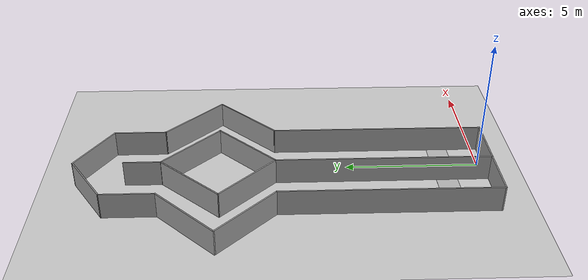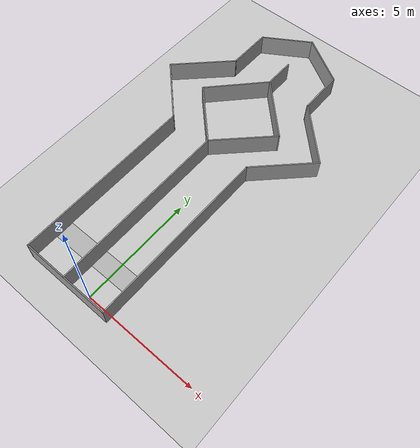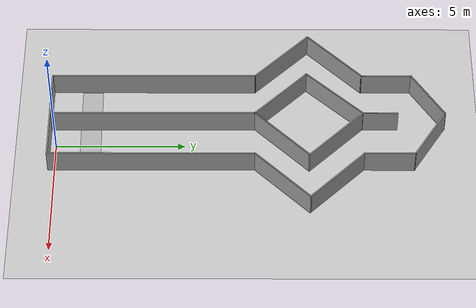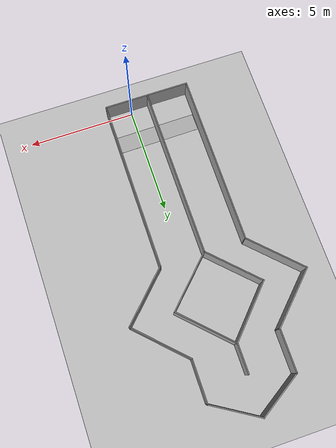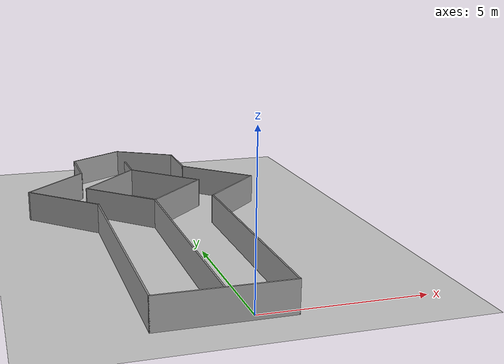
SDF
<sdf version="1.6">
 <world name="default">
  <light name="sun" type="directional">
   <pose>0 0 10 0 -0 0</pose>
   <diffuse>0.8 0.8 0.8 1</diffuse>
   <specular>0.2 0.2 0.2 1</specular>
   <attenuation>
    <range>1000</range>
    <constant>0.9</constant>
    <linear>0.01</linear>
    <quadratic>0.001</quadratic>
   </attenuation>
   <direction>-0.5 0.1 -0.9</direction>
  </light>
  <model name="ground_plane">
   <static>1</static>
   <link name="link">
    <collision name="collision">
     <geometry><plane><normal>0 0 1</normal><size>100 100</size></plane></geometry>
     <surface><friction><ode><mu>100</mu><mu2>50</mu2></ode></friction></surface>
    </collision>
    <visual name="visual">
     <cast_shadows>0</cast_shadows>
     <geometry><plane><normal>0 0 1</normal><size>100 100</size></plane></geometry>
     <material>
      <script><uri>file://media/materials/scripts/gazebo.material</uri><name>Gazebo/Grey</name></script>
     </material>
    </visual>
   </link>
  </model>
  <gravity>0 0 -9.8</gravity>
  <magnetic_field>6e-06 2.3e-05 -4.2e-05</magnetic_field>
  <atmosphere type="adiabatic"/>
  <physics name="default_physics" default="0" type="ode">
   <max_step_size>0.001</max_step_size>
   <real_time_factor>1</real_time_factor>
   <real_time_update_rate>1000</real_time_update_rate>
  </physics>
  <scene><ambient>0.4 0.4 0.4 1</ambient><background>0.7 0.7 0.7 1</background><shadows>1</shadows></scene>
  <audio><device>default</device></audio>
  <spherical_coordinates>
   <surface_model>EARTH_WGS84</surface_model>
   <latitude_deg>0</latitude_deg>
   <longitude_deg>0</longitude_deg>
   <elevation>0</elevation>
   <heading_deg>0</heading_deg>
  </spherical_coordinates>
  <model name="race2">
   <pose>-0.841746 7.41068 0 0 -0 0</pose>
   <link name="Wall_10">
    <collision name="Wall_10_Collision">
     <geometry><box><size>4 0.05 1</size></box></geometry>
     <pose>0 0 0.5 0 -0 0</pose>
    </collision>
    <visual name="Wall_10_Visual">
     <pose>0 0 0.5 0 -0 0</pose>
     <geometry><box><size>4 0.05 1</size></box></geometry>
     <material>
      <script><uri>file://media/materials/scripts/gazebo.material</uri><name>Gazebo/Grey</name></script>
      <ambient>1 1 1 1</ambient>
     </material>
     <meta><layer>0</layer></meta>
    </visual>
    <pose>0 -7.65586 0 0 -0 0</pose>
   </link>
   <link name="Wall_14">
    <collision name="Wall_14_Collision">
     <geometry><box><size>8 0.05 1</size></box></geometry>
     <pose>0 0 0.5 0 -0 0</pose>
    </collision>
    <visual name="Wall_14_Visual">
     <pose>0 0 0.5 0 -0 0</pose>
     <geometry><box><size>8 0.05 1</size></box></geometry>
     <material>
      <script><uri>file://media/materials/scripts/gazebo.material</uri><name>Gazebo/Grey</name></script>
      <ambient>1 1 1 1</ambient>
     </material>
     <meta><layer>0</layer></meta>
    </visual>
    <pose>1.975 -3.68086 0 0 -0 1.5708</pose>
   </link>
   <link name="Wall_16">
    <collision name="Wall_16_Collision">
     <geometry><box><size>7.9982 0.05 1</size></box></geometry>
     <pose>0 0 0.5 0 -0 0</pose>
    </collision>
    <visual name="Wall_16_Visual">
     <pose>0 0 0.5 0 -0 0</pose>
     <geometry><box><size>7.9982 0.05 1</size></box></geometry>
     <material>
      <script><uri>file://media/materials/scripts/gazebo.material</uri><name>Gazebo/Grey</name></script>
      <ambient>1 1 1 1</ambient>
     </material>
     <meta><layer>0</layer></meta>
    </visual>
    <pose>-0.048078 -3.68036 0 0 -0 1.57282</pose>
   </link>
   <link name="Wall_18">
    <collision name="Wall_18_Collision">
     <geometry><box><size>3 0.05 1</size></box></geometry>
     <pose>0 0 0.5 0 -0 0</pose>
    </collision>
    <visual name="Wall_18_Visual">
     <pose>0 0 0.5 0 -0 0</pose>
     <geometry><box><size>3 0.05 1</size></box></geometry>
     <material>
      <script><uri>file://media/materials/scripts/gazebo.material</uri><name>Gazebo/Grey</name></script>
      <ambient>1 1 1 1</ambient>
     </material>
     <meta><layer>0</layer></meta>
    </visual>
    <pose>3.01798 1.33712 0 0 -0 0.785398</pose>
   </link>
   <link name="Wall_20">
    <collision name="Wall_20_Collision">
     <geometry><box><size>3 0.05 1</size></box></geometry>
     <pose>0 0 0.5 0 -0 0</pose>
    </collision>
    <visual name="Wall_20_Visual">
     <pose>0 0 0.5 0 -0 0</pose>
     <geometry><box><size>3 0.05 1</size></box></geometry>
     <material>
      <script><uri>file://media/materials/scripts/gazebo.material</uri><name>Gazebo/Grey</name></script>
      <ambient>1 1 1 1</ambient>
     </material>
     <meta><layer>0</layer></meta>
    </visual>
    <pose>3.01798 3.42309 0 0 -0 2.35619</pose>
   </link>
   <link name="Wall_22">
    <collision name="Wall_22_Collision">
     <geometry><box><size>2 0.05 1</size></box></geometry>
     <pose>0 0 0.5 0 -0 0</pose>
    </collision>
    <visual name="Wall_22_Visual">
     <pose>0 0 0.5 0 -0 0</pose>
     <geometry><box><size>2 0.05 1</size></box></geometry>
     <material>
      <script><uri>file://media/materials/scripts/gazebo.material</uri><name>Gazebo/Grey</name></script>
      <ambient>1 1 1 1</ambient>
     </material>
     <meta><layer>0</layer></meta>
    </visual>
    <pose>1.97494 5.44121 0 0 -0 1.57086</pose>
   </link>
   <link name="Wall_24">
    <collision name="Wall_24_Collision">
     <geometry><box><size>3 0.05 1</size></box></geometry>
     <pose>0 0 0.5 0 -0 0</pose>
    </collision>
    <visual name="Wall_24_Visual">
     <pose>0 0 0.5 0 -0 0</pose>
     <geometry><box><size>3 0.05 1</size></box></geometry>
     <material>
      <script><uri>file://media/materials/scripts/gazebo.material</uri><name>Gazebo/Grey</name></script>
      <ambient>1 1 1 1</ambient>
     </material>
     <meta><layer>0</layer></meta>
    </visual>
    <pose>-3.01798 1.33712 0 0 -0 2.35619</pose>
   </link>
   <link name="Wall_26">
    <collision name="Wall_26_Collision">
     <geometry><box><size>3 0.05 1</size></box></geometry>
     <pose>0 0 0.5 0 -0 0</pose>
    </collision>
    <visual name="Wall_26_Visual">
     <pose>0 0 0.5 0 -0 0</pose>
     <geometry><box><size>3 0.05 1</size></box></geometry>
     <material>
      <script><uri>file://media/materials/scripts/gazebo.material</uri><name>Gazebo/Grey</name></script>
      <ambient>1 1 1 1</ambient>
     </material>
     <meta><layer>0</layer></meta>
    </visual>
    <pose>-3.01798 3.42309 0 0 -0 0.785398</pose>
   </link>
   <link name="Wall_28">
    <collision name="Wall_28_Collision">
     <geometry><box><size>2 0.05 1</size></box></geometry>
     <pose>0 0 0.5 0 -0 0</pose>
    </collision>
    <visual name="Wall_28_Visual">
     <pose>0 0 0.5 0 -0 0</pose>
     <geometry><box><size>2 0.05 1</size></box></geometry>
     <material>
      <script><uri>file://media/materials/scripts/gazebo.material</uri><name>Gazebo/Grey</name></script>
      <ambient>1 1 1 1</ambient>
     </material>
     <meta><layer>0</layer></meta>
    </visual>
    <pose>-1.97506 5.44121 0 0 -0 1.57086</pose>
   </link>
   <link name="Wall_34">
    <collision name="Wall_34_Collision">
     <geometry><box><size>2.33947 0.05 1</size></box></geometry>
     <pose>0 0 0.5 0 -0 0</pose>
    </collision>
    <visual name="Wall_34_Visual">
     <pose>0 0 0.5 0 -0 0</pose>
     <geometry><box><size>2.33947 0.05 1</size></box></geometry>
     <material>
      <script><uri>file://media/materials/scripts/gazebo.material</uri><name>Gazebo/Grey</name></script>
      <ambient>1 1 1 1</ambient>
     </material>
     <meta><layer>0</layer></meta>
    </visual>
    <pose>-1.00963 7.03134 0 0 -0 0.567165</pose>
   </link>
   <link name="Wall_35">
    <collision name="Wall_35_Collision">
     <geometry><box><size>2.41441 0.05 1</size></box></geometry>
     <pose>0 0 0.5 0 -0 0</pose>
    </collision>
    <visual name="Wall_35_Visual">
     <pose>0 0 0.5 0 -0 0</pose>
     <geometry><box><size>2.41441 0.05 1</size></box></geometry>
     <material>
      <script><uri>file://media/materials/scripts/gazebo.material</uri><name>Gazebo/Grey</name></script>
      <ambient>1 1 1 1</ambient>
     </material>
     <meta><layer>0</layer></meta>
    </visual>
    <pose>0.965374 7.03134 0 0 -0 -0.547166</pose>
   </link>
   <link name="Wall_39">
    <collision name="Wall_39_Collision">
     <geometry><box><size>3 0.05 1</size></box></geometry>
     <pose>0 0 0.5 0 -0 0</pose>
    </collision>
    <visual name="Wall_39_Visual">
     <pose>0 0 0.5 0 -0 0</pose>
     <geometry><box><size>3 0.05 1</size></box></geometry>
     <material>
      <script><uri>file://media/materials/scripts/gazebo.material</uri><name>Gazebo/Grey</name></script>
      <ambient>1 1 1 1</ambient>
     </material>
     <meta><layer>0</layer></meta>
    </visual>
    <pose>0.986908 1.33654 0 0 -0 0.785475</pose>
   </link>
   <link name="Wall_43">
    <collision name="Wall_43_Collision">
     <geometry><box><size>3 0.05 1</size></box></geometry>
     <pose>0 0 0.5 0 -0 0</pose>
    </collision>
    <visual name="Wall_43_Visual">
     <pose>0 0 0.5 0 -0 0</pose>
     <geometry><box><size>3 0.05 1</size></box></geometry>
     <material>
      <script><uri>file://media/materials/scripts/gazebo.material</uri><name>Gazebo/Grey</name></script>
      <ambient>1 1 1 1</ambient>
     </material>
     <meta><layer>0</layer></meta>
    </visual>
    <pose>0.986908 3.42254 0 0 -0 2.3563</pose>
   </link>
   <link name="Wall_46">
    <collision name="Wall_46_Collision">
     <geometry><box><size>2.90023 0.05 1</size></box></geometry>
     <pose>0 0 0.5 0 -0 0</pose>
    </collision>
    <visual name="Wall_46_Visual">
     <pose>0 0 0.5 0 -0 0</pose>
     <geometry><box><size>2.90023 0.05 1</size></box></geometry>
     <material>
      <script><uri>file://media/materials/scripts/gazebo.material</uri><name>Gazebo/Grey</name></script>
      <ambient>1 1 1 1</ambient>
     </material>
     <meta><layer>0</layer></meta>
    </visual>
    <pose>-1.06363 1.30134 0 0 -0 2.35595</pose>
   </link>
   <link name="Wall_48">
    <collision name="Wall_48_Collision">
     <geometry><box><size>3.00136 0.05 1</size></box></geometry>
     <pose>0 0 0.5 0 -0 0</pose>
    </collision>
    <visual name="Wall_48_Visual">
     <pose>0 0 0.5 0 -0 0</pose>
     <geometry><box><size>3.00136 0.05 1</size></box></geometry>
     <material>
      <script><uri>file://media/materials/scripts/gazebo.material</uri><name>Gazebo/Grey</name></script>
      <ambient>1 1 1 1</ambient>
     </material>
     <meta><layer>0</layer></meta>
    </visual>
    <pose>-1.06363 3.38734 0 0 -0 0.81919</pose>
   </link>
   <link name="Wall_50">
    <collision name="Wall_50_Collision">
     <geometry><box><size>1.4 0.05 1</size></box></geometry>
     <pose>0 0 0.5 0 -0 0</pose>
    </collision>
    <visual name="Wall_50_Visual">
     <pose>0 0 0.5 0 -0 0</pose>
     <geometry><box><size>1.4 0.05 1</size></box></geometry>
     <material>
      <script><uri>file://media/materials/scripts/gazebo.material</uri><name>Gazebo/Grey</name></script>
      <ambient>1 1 1 1</ambient>
     </material>
     <meta><layer>0</layer></meta>
    </visual>
    <pose>-0.056126 5.14034 0 0 -0 1.5708</pose>
   </link>
   <link name="Wall_8">
    <collision name="Wall_8_Collision">
     <geometry><box><size>8 0.05 1</size></box></geometry>
     <pose>0 0 0.5 0 -0 0</pose>
    </collision>
    <visual name="Wall_8_Visual">
     <pose>0 0 0.5 0 -0 0</pose>
     <geometry><box><size>8 0.05 1</size></box></geometry>
     <material>
      <script><uri>file://media/materials/scripts/gazebo.material</uri><name>Gazebo/Grey</name></script>
      <ambient>1 1 1 1</ambient>
     </material>
     <meta><layer>0</layer></meta>
    </visual>
    <pose>-1.975 -3.68086 0 0 -0 1.5708</pose>
   </link>
   <static>1</static>
  </model>
  <model name="smartcar_plane">
   <static>1</static>
   <link name="link">
    <collision name="collision">
     <geometry><box><size>0.8 3.9 0.001</size></box></geometry>
     <surface><friction><ode><mu>100</mu><mu2>50</mu2></ode></friction></surface>
    </collision>
    <visual name="visual">
     <geometry><box><size>0.8 3.9 0.001</size></box></geometry>
     <material>
      <script>
       <uri>model://smartcar_plane/materials/scripts</uri>
       <uri>model://smartcar_plane/materials/textures/</uri>
       <name>SmartcarPlane/Image</name>
      </script>
     </material>
    </visual>
   </link>
   <pose>-0.828276 1.32439 0 0 -0 1.58103</pose>
  </model>
 </world>
</sdf>
